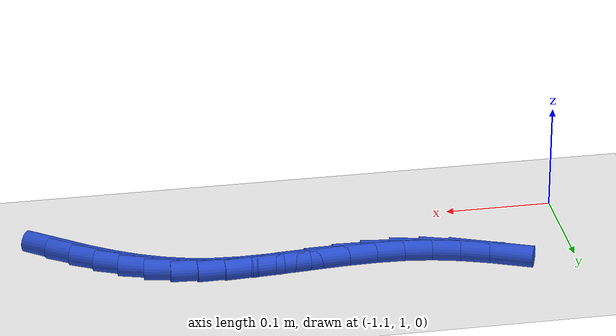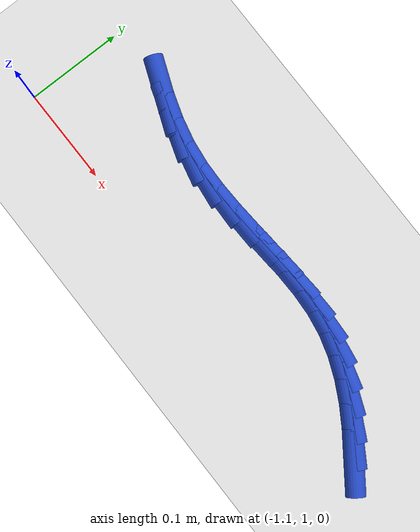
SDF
<sdf version="1.6">
 <world name="default">
  <model name="ground_plane">
   <static>1</static>
   <link name="link">
    <collision name="collision">
     <geometry><plane><normal>0 0 1</normal><size>100 100</size></plane></geometry>
     <surface><friction><ode><mu>100</mu><mu2>50</mu2></ode></friction></surface>
    </collision>
    <visual name="visual">
     <cast_shadows>0</cast_shadows>
     <geometry><plane><normal>0 0 1</normal><size>100 100</size></plane></geometry>
     <material>
      <script><uri>file://media/materials/scripts/gazebo.material</uri><name>Gazebo/WhiteGlow</name></script>
     </material>
    </visual>
   </link>
  </model>
  <model name="line">
   <link name="link_49">
    <pose>-0.632404746182607 1.0300569467537526 0.01 0 1.57 -0.6209261187613998</pose>
    <collision name="collision">
     <geometry><cylinder><radius>0.01</radius><length>0.08</length></cylinder></geometry>
    </collision>
    <visual name="visual">
     <material>
      <script><name>Gazebo/Blue</name><uri>file://media/materials/scripts/gazebo.material</uri></script>
     </material>
     <geometry><cylinder><radius>0.01</radius><length>0.08</length></cylinder></geometry>
    </visual>
   </link>
   <link name="link_50">
    <pose>-0.6529589886526693 1.0447595621036814 0.01 0 1.57 -0.5591568909061799</pose>
    <collision name="collision">
     <geometry><cylinder><radius>0.01</radius><length>0.08</length></cylinder></geometry>
    </collision>
    <visual name="visual">
     <material>
      <script><name>Gazebo/Blue</name><uri>file://media/materials/scripts/gazebo.material</uri></script>
     </material>
     <geometry><cylinder><radius>0.01</radius><length>0.08</length></cylinder></geometry>
    </visual>
   </link>
   <link name="link_51">
    <pose>-0.6739000097521701 1.0578639431708279 0.01 0 1.57 -0.482429402145706</pose>
    <collision name="collision">
     <geometry><cylinder><radius>0.01</radius><length>0.08</length></cylinder></geometry>
    </collision>
    <visual name="visual">
     <material>
      <script><name>Gazebo/Blue</name><uri>file://media/materials/scripts/gazebo.material</uri></script>
     </material>
     <geometry><cylinder><radius>0.01</radius><length>0.08</length></cylinder></geometry>
    </visual>
   </link>
   <link name="link_52">
    <pose>-0.6953160562662866 1.0690795827847042 0.01 0 1.57 -0.39006554121711307</pose>
    <collision name="collision">
     <geometry><cylinder><radius>0.01</radius><length>0.08</length></cylinder></geometry>
    </collision>
    <visual name="visual">
     <material>
      <script><name>Gazebo/Blue</name><uri>file://media/materials/scripts/gazebo.material</uri></script>
     </material>
     <geometry><cylinder><radius>0.01</radius><length>0.08</length></cylinder></geometry>
    </visual>
   </link>
   <link name="link_53">
    <pose>-0.7172953749801951 1.0781159737748216 0.01 0 1.57 -0.28240791062232945</pose>
    <collision name="collision">
     <geometry><cylinder><radius>0.01</radius><length>0.08</length></cylinder></geometry>
    </collision>
    <visual name="visual">
     <material>
      <script><name>Gazebo/Blue</name><uri>file://media/materials/scripts/gazebo.material</uri></script>
     </material>
     <geometry><cylinder><radius>0.01</radius><length>0.08</length></cylinder></geometry>
    </visual>
   </link>
   <link name="link_54">
    <pose>-0.7399262126790731 1.084682608970692 0.01 0 1.57 -0.1624743468708019</pose>
    <collision name="collision">
     <geometry><cylinder><radius>0.01</radius><length>0.08</length></cylinder></geometry>
    </collision>
    <visual name="visual">
     <material>
      <script><name>Gazebo/Blue</name><uri>file://media/materials/scripts/gazebo.material</uri></script>
     </material>
     <geometry><cylinder><radius>0.01</radius><length>0.08</length></cylinder></geometry>
    </visual>
   </link>
   <link name="link_55">
    <pose>-0.7632921904338535 1.088512742921414 0.01 0 1.57 -0.05458860557553595</pose>
    <collision name="collision">
     <geometry><cylinder><radius>0.01</radius><length>0.08</length></cylinder></geometry>
    </collision>
    <visual name="visual">
     <material>
      <script><name>Gazebo/Blue</name><uri>file://media/materials/scripts/gazebo.material</uri></script>
     </material>
     <geometry><cylinder><radius>0.01</radius><length>0.08</length></cylinder></geometry>
    </visual>
   </link>
   <link name="link_56">
    <pose>-0.7873816514433528 1.0898290607722927 0.01 0 1.57 0.02084299876790048</pose>
    <collision name="collision">
     <geometry><cylinder><radius>0.01</radius><length>0.08</length></cylinder></geometry>
    </collision>
    <visual name="visual">
     <material>
      <script><name>Gazebo/Blue</name><uri>file://media/materials/scripts/gazebo.material</uri></script>
     </material>
     <geometry><cylinder><radius>0.01</radius><length>0.08</length></cylinder></geometry>
    </visual>
   </link>
   <link name="link_57">
    <pose>-0.8120934544725048 1.0893139180921287 0.01 0 1.57 0.06516623522086187</pose>
    <collision name="collision">
     <geometry><cylinder><radius>0.01</radius><length>0.08</length></cylinder></geometry>
    </collision>
    <visual name="visual">
     <material>
      <script><name>Gazebo/Blue</name><uri>file://media/materials/scripts/gazebo.material</uri></script>
     </material>
     <geometry><cylinder><radius>0.01</radius><length>0.08</length></cylinder></geometry>
    </visual>
   </link>
   <link name="link_58">
    <pose>-0.8373229926892825 1.0876674727909166 0.01 0 1.57 0.08084423676909384</pose>
    <collision name="collision">
     <geometry><cylinder><radius>0.01</radius><length>0.08</length></cylinder></geometry>
    </collision>
    <visual name="visual">
     <material>
      <script><name>Gazebo/Blue</name><uri>file://media/materials/scripts/gazebo.material</uri></script>
     </material>
     <geometry><cylinder><radius>0.01</radius><length>0.08</length></cylinder></geometry>
    </visual>
   </link>
   <link name="link_59">
    <pose>-0.8629656592616574 1.0855898827786497 0.01 0 1.57 0.06957898353205035</pose>
    <collision name="collision">
     <geometry><cylinder><radius>0.01</radius><length>0.08</length></cylinder></geometry>
    </collision>
    <visual name="visual">
     <material>
      <script><name>Gazebo/Blue</name><uri>file://media/materials/scripts/gazebo.material</uri></script>
     </material>
     <geometry><cylinder><radius>0.01</radius><length>0.08</length></cylinder></geometry>
    </visual>
   </link>
   <link name="link_60">
    <pose>-0.8889168473576017 1.0837813059653219 0.01 0 1.57 0.03208237021182199</pose>
    <collision name="collision">
     <geometry><cylinder><radius>0.01</radius><length>0.08</length></cylinder></geometry>
    </collision>
    <visual name="visual">
     <material>
      <script><name>Gazebo/Blue</name><uri>file://media/materials/scripts/gazebo.material</uri></script>
     </material>
     <geometry><cylinder><radius>0.01</radius><length>0.08</length></cylinder></geometry>
    </visual>
   </link>
   <link name="link_61">
    <pose>-0.9150719501450874 1.0829419002609264 0.01 0 1.57 -0.03160029221157571</pose>
    <collision name="collision">
     <geometry><cylinder><radius>0.01</radius><length>0.08</length></cylinder></geometry>
    </collision>
    <visual name="visual">
     <material>
      <script><name>Gazebo/Blue</name><uri>file://media/materials/scripts/gazebo.material</uri></script>
     </material>
     <geometry><cylinder><radius>0.01</radius><length>0.08</length></cylinder></geometry>
    </visual>
   </link>
   <link name="link_62">
    <pose>-0.9413263607920861 1.083771823575457 0.01 0 1.57 -0.12128814989130518</pose>
    <collision name="collision">
     <geometry><cylinder><radius>0.01</radius><length>0.08</length></cylinder></geometry>
    </collision>
    <visual name="visual">
     <material>
      <script><name>Gazebo/Blue</name><uri>file://media/materials/scripts/gazebo.material</uri></script>
     </material>
     <geometry><cylinder><radius>0.01</radius><length>0.08</length></cylinder></geometry>
    </visual>
   </link>
   <link name="link_63">
    <pose>-0.9675754724665704 1.0869712338189081 0.01 0 1.57 -0.2284625076575297</pose>
    <collision name="collision">
     <geometry><cylinder><radius>0.01</radius><length>0.08</length></cylinder></geometry>
    </collision>
    <visual name="visual">
     <material>
      <script><name>Gazebo/Blue</name><uri>file://media/materials/scripts/gazebo.material</uri></script>
     </material>
     <geometry><cylinder><radius>0.01</radius><length>0.08</length></cylinder></geometry>
    </visual>
   </link>
   <link name="link_64">
    <pose>-0.9937192814764787 1.0930502488189533 0.01 0 1.57 -0.31730649189543103</pose>
    <collision name="collision">
     <geometry><cylinder><radius>0.01</radius><length>0.08</length></cylinder></geometry>
    </collision>
    <visual name="visual">
     <material>
      <script><name>Gazebo/Blue</name><uri>file://media/materials/scripts/gazebo.material</uri></script>
     </material>
     <geometry><cylinder><radius>0.01</radius><length>0.08</length></cylinder></geometry>
    </visual>
   </link>
   <link name="link_65">
    <pose>-1.019680624475829 1.1015760254504083 0.01 0 1.57 -0.37930725209647875</pose>
    <collision name="collision">
     <geometry><cylinder><radius>0.01</radius><length>0.08</length></cylinder></geometry>
    </collision>
    <visual name="visual">
     <material>
      <script><name>Gazebo/Blue</name><uri>file://media/materials/scripts/gazebo.material</uri></script>
     </material>
     <geometry><cylinder><radius>0.01</radius><length>0.08</length></cylinder></geometry>
    </visual>
   </link>
  </model>
 </world>
</sdf>
